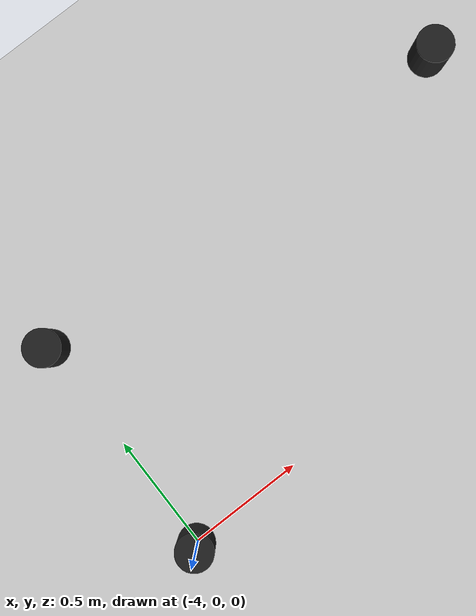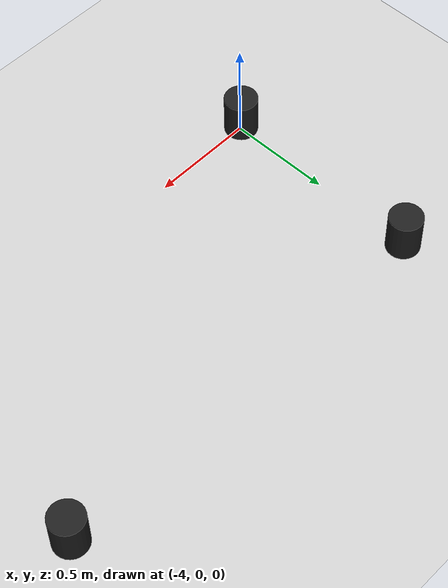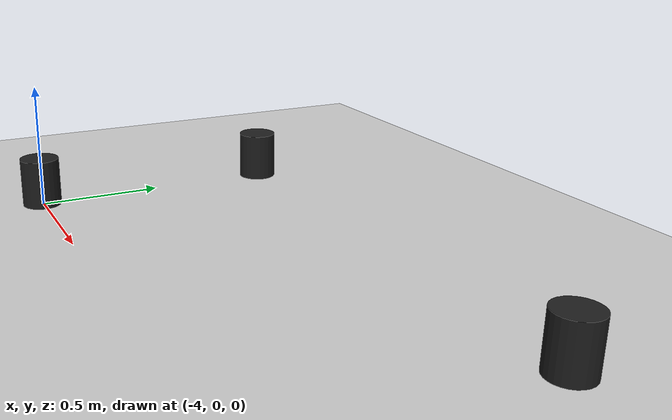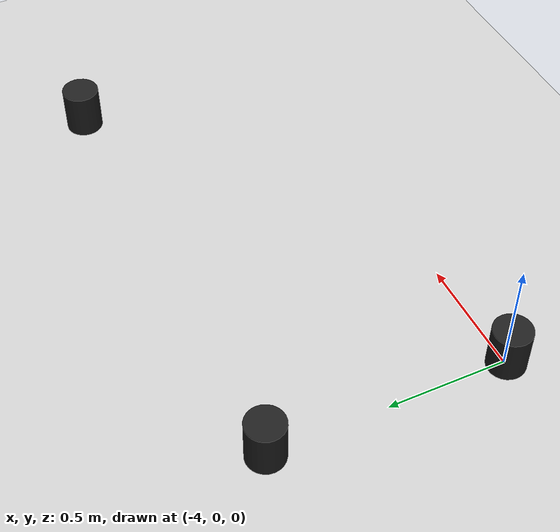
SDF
<sdf version="1.7">
 <world name="default">
  <model name="ground_plane">
   <static>1</static>
   <link name="link">
    <collision name="collision">
     <geometry><plane><normal>0 0 1</normal><size>100 100</size></plane></geometry>
     <surface>
      <contact><collide_bitmask>65535</collide_bitmask></contact>
      <friction><ode><mu>100</mu><mu2>50</mu2></ode></friction>
     </surface>
    </collision>
    <visual name="visual">
     <cast_shadows>0</cast_shadows>
     <geometry><plane><normal>0 0 1</normal><size>100 100</size></plane></geometry>
     <material>
      <script><uri>file://media/materials/scripts/gazebo.material</uri><name>Gazebo/Grey</name></script>
     </material>
    </visual>
   </link>
  </model>
  <model name="cylinder_clone_clone_0_clone_clone">
   <link name="link">
    <inertial>
     <mass>1</mass>
     <inertia><ixx>0.145833</ixx><ixy>0</ixy><ixz>0</ixz><iyy>0.145833</iyy><iyz>0</iyz><izz>0.125</izz></inertia>
    </inertial>
    <visual name="visual">
     <geometry><cylinder><radius>0.08</radius><length>0.2</length></cylinder></geometry>
     <material>
      <script><name>Gazebo/Black</name><uri>file://media/materials/scripts/gazebo.material</uri></script>
      <shader type="vertex"><normal_map>__default__</normal_map></shader>
      <ambient>1 0 0 1</ambient>
      <diffuse>0.7 0.7 0.7 1</diffuse>
      <specular>0.01 0.01 0.01 1</specular>
      <emissive>0 0 0 1</emissive>
     </material>
    </visual>
    <collision name="collision">
     <geometry><cylinder><radius>0.08</radius><length>0.2</length></cylinder></geometry>
     <surface>
      <friction>
       <ode><mu>1</mu><mu2>1</mu2><fdir1>0 0 0</fdir1><slip1>0</slip1><slip2>0</slip2></ode>
       <torsional>
        <coefficient>1</coefficient>
        <patch_radius>0</patch_radius>
        <surface_radius>0</surface_radius>
        <use_patch_radius>1</use_patch_radius>
        <ode><slip>0</slip></ode>
       </torsional>
      </friction>
      <bounce><restitution_coefficient>0</restitution_coefficient><threshold>1e+06</threshold></bounce>
      <contact>
       <collide_without_contact>0</collide_without_contact>
       <collide_without_contact_bitmask>1</collide_without_contact_bitmask>
       <collide_bitmask>1</collide_bitmask>
       <ode>
        <soft_cfm>0</soft_cfm>
        <soft_erp>0.2</soft_erp>
        <kp>1e+13</kp>
        <kd>1</kd>
        <max_vel>0.01</max_vel>
        <min_depth>0</min_depth>
       </ode>
       <bullet>
        <split_impulse>1</split_impulse>
        <split_impulse_penetration_threshold>-0.01</split_impulse_penetration_threshold>
        <soft_cfm>0</soft_cfm>
        <soft_erp>0.2</soft_erp>
        <kp>1e+13</kp>
        <kd>1</kd>
       </bullet>
      </contact>
     </surface>
    </collision>
   </link>
   <static>1</static>
   <pose>-2.00028 1.00106 0.1 0 -0 0</pose>
  </model>
  <model name="cylinder_clone_clone_0_clone_clone_0">
   <link name="link">
    <inertial>
     <mass>1</mass>
     <inertia><ixx>0.145833</ixx><ixy>0</ixy><ixz>0</ixz><iyy>0.145833</iyy><iyz>0</iyz><izz>0.125</izz></inertia>
    </inertial>
    <visual name="visual">
     <geometry><cylinder><radius>0.08</radius><length>0.2</length></cylinder></geometry>
     <material>
      <script><name>Gazebo/Black</name><uri>file://media/materials/scripts/gazebo.material</uri></script>
      <shader type="vertex"><normal_map>__default__</normal_map></shader>
      <ambient>1 0 0 1</ambient>
      <diffuse>0.7 0.7 0.7 1</diffuse>
      <specular>0.01 0.01 0.01 1</specular>
      <emissive>0 0 0 1</emissive>
     </material>
    </visual>
    <collision name="collision">
     <geometry><cylinder><radius>0.08</radius><length>0.2</length></cylinder></geometry>
     <surface>
      <friction>
       <ode><mu>1</mu><mu2>1</mu2><fdir1>0 0 0</fdir1><slip1>0</slip1><slip2>0</slip2></ode>
       <torsional>
        <coefficient>1</coefficient>
        <patch_radius>0</patch_radius>
        <surface_radius>0</surface_radius>
        <use_patch_radius>1</use_patch_radius>
        <ode><slip>0</slip></ode>
       </torsional>
      </friction>
      <bounce><restitution_coefficient>0</restitution_coefficient><threshold>1e+06</threshold></bounce>
      <contact>
       <collide_without_contact>0</collide_without_contact>
       <collide_without_contact_bitmask>1</collide_without_contact_bitmask>
       <collide_bitmask>1</collide_bitmask>
       <ode>
        <soft_cfm>0</soft_cfm>
        <soft_erp>0.2</soft_erp>
        <kp>1e+13</kp>
        <kd>1</kd>
        <max_vel>0.01</max_vel>
        <min_depth>0</min_depth>
       </ode>
       <bullet>
        <split_impulse>1</split_impulse>
        <split_impulse_penetration_threshold>-0.01</split_impulse_penetration_threshold>
        <soft_cfm>0</soft_cfm>
        <soft_erp>0.2</soft_erp>
        <kp>1e+13</kp>
        <kd>1</kd>
       </bullet>
      </contact>
     </surface>
    </collision>
   </link>
   <static>1</static>
   <pose>-4.00888 -0.003242 0.1 0 -0 0</pose>
  </model>
  <model name="cylinder_clone_clone_clone_clone_clone_clone_clone_clone_13">
   <link name="link">
    <inertial>
     <mass>1</mass>
     <inertia><ixx>0.145833</ixx><ixy>0</ixy><ixz>0</ixz><iyy>0.145833</iyy><iyz>0</iyz><izz>0.125</izz></inertia>
    </inertial>
    <visual name="visual">
     <geometry><cylinder><radius>0.08</radius><length>0.2</length></cylinder></geometry>
     <material>
      <script><name>Gazebo/Black</name><uri>file://media/materials/scripts/gazebo.material</uri></script>
      <shader type="vertex"><normal_map>__default__</normal_map></shader>
      <ambient>1 0 0 1</ambient>
      <diffuse>0.7 0.7 0.7 1</diffuse>
      <specular>0.01 0.01 0.01 1</specular>
      <emissive>0 0 0 1</emissive>
     </material>
    </visual>
    <collision name="collision">
     <geometry><cylinder><radius>0.08</radius><length>0.2</length></cylinder></geometry>
     <surface>
      <friction>
       <ode><mu>1</mu><mu2>1</mu2><fdir1>0 0 0</fdir1><slip1>0</slip1><slip2>0</slip2></ode>
       <torsional>
        <coefficient>1</coefficient>
        <patch_radius>0</patch_radius>
        <surface_radius>0</surface_radius>
        <use_patch_radius>1</use_patch_radius>
        <ode><slip>0</slip></ode>
       </torsional>
      </friction>
      <bounce><restitution_coefficient>0</restitution_coefficient><threshold>1e+06</threshold></bounce>
      <contact>
       <collide_without_contact>0</collide_without_contact>
       <collide_without_contact_bitmask>1</collide_without_contact_bitmask>
       <collide_bitmask>1</collide_bitmask>
       <ode>
        <soft_cfm>0</soft_cfm>
        <soft_erp>0.2</soft_erp>
        <kp>1e+13</kp>
        <kd>1</kd>
        <max_vel>0.01</max_vel>
        <min_depth>0</min_depth>
       </ode>
       <bullet>
        <split_impulse>1</split_impulse>
        <split_impulse_penetration_threshold>-0.01</split_impulse_penetration_threshold>
        <soft_cfm>0</soft_cfm>
        <soft_erp>0.2</soft_erp>
        <kp>1e+13</kp>
        <kd>1</kd>
       </bullet>
      </contact>
     </surface>
    </collision>
   </link>
   <static>1</static>
   <pose>-3.99678 1.00106 0.1 0 -0 0</pose>
  </model>
 </world>
</sdf>
